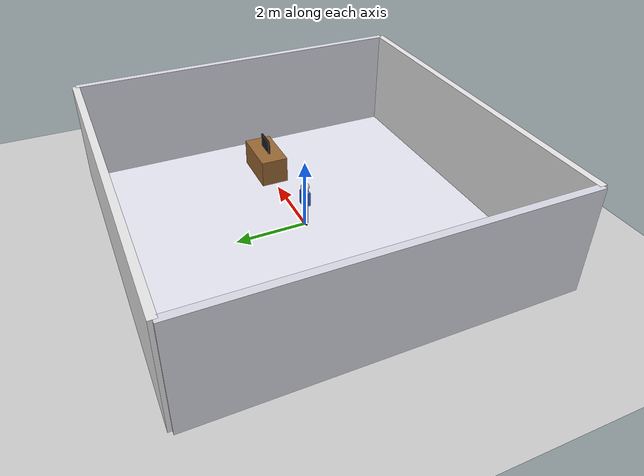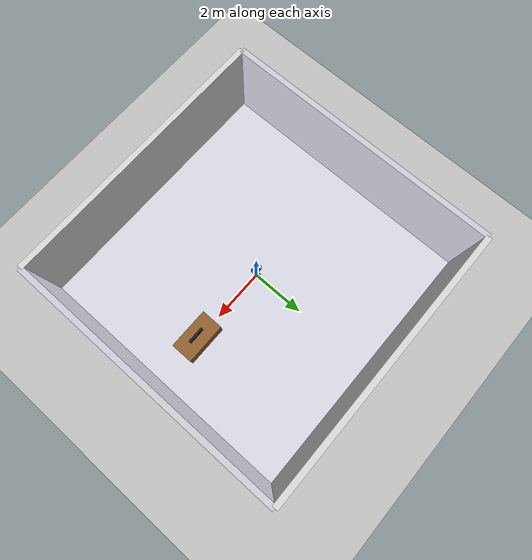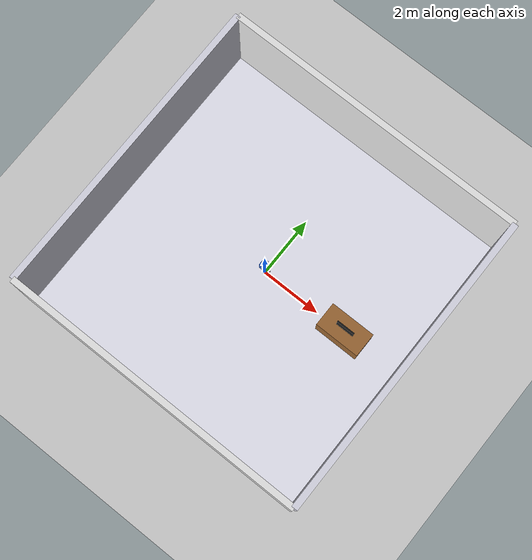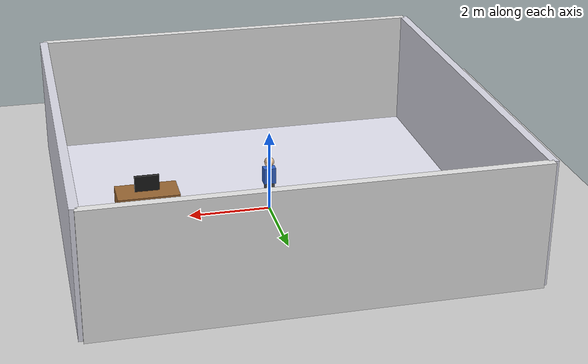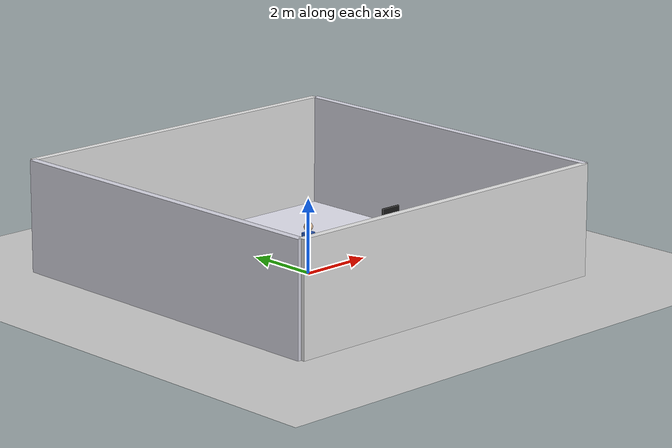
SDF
<?xml version="1.0" ?>
<sdf version="1.6">
  <world name="humanoid_lab">

    <!-- Physics Configuration -->
    <physics type="ode">
      <real_time_update_rate>1000</real_time_update_rate>
      <max_step_size>0.001</max_step_size>
      <real_time_factor>1</real_time_factor>
      <ode>
        <solver>
          <type>quick</type>
          <iters>50</iters>
          <sor>1.3</sor>
        </solver>
        <constraints>
          <cfm>0.0</cfm>
          <erp>0.2</erp>
          <contact_max_correcting_vel>100</contact_max_correcting_vel>
          <contact_surface_layer>0.001</contact_surface_layer>
        </constraints>
      </ode>
    </physics>

    <!-- Scene Configuration -->
    <scene>
      <ambient>0.4 0.4 0.4 1</ambient>
      <background>0.7 0.7 0.7 1</background>
      <shadows>true</shadows>
    </scene>

    <!-- Sun Light -->
    <light type="directional" name="sun">
      <cast_shadows>true</cast_shadows>
      <pose>0 0 10 0 0 0</pose>
      <diffuse>0.8 0.8 0.8 1</diffuse>
      <specular>0.2 0.2 0.2 1</specular>
      <direction>-0.5 0.1 -0.9</direction>
    </light>

    <!-- Ceiling Light -->
    <light type="point" name="ceiling_light">
      <pose>0 0 4 0 0 0</pose>
      <diffuse>0.5 0.5 0.5 1</diffuse>
      <specular>0.1 0.1 0.1 1</specular>
      <attenuation>
        <range>20</range>
        <constant>0.5</constant>
        <linear>0.01</linear>
        <quadratic>0.001</quadratic>
      </attenuation>
    </light>

    <!-- Ground Plane -->
    <model name="ground_plane">
      <static>true</static>
      <link name="link">
        <collision name="collision">
          <geometry>
            <plane>
              <normal>0 0 1</normal>
              <size>20 20</size>
            </plane>
          </geometry>
          <surface>
            <friction>
              <ode>
                <mu>1.0</mu>
                <mu2>1.0</mu2>
              </ode>
            </friction>
          </surface>
        </collision>
        <visual name="visual">
          <geometry>
            <plane>
              <normal>0 0 1</normal>
              <size>20 20</size>
            </plane>
          </geometry>
          <material>
            <ambient>0.8 0.8 0.8 1</ambient>
            <diffuse>0.8 0.8 0.8 1</diffuse>
            <specular>0.1 0.1 0.1 1</specular>
          </material>
        </visual>
      </link>
    </model>

    <!-- Lab Floor (Checkered Pattern Effect) -->
    <model name="lab_floor">
      <static>true</static>
      <pose>0 0 0.001 0 0 0</pose>
      <link name="link">
        <visual name="visual">
          <geometry>
            <box>
              <size>10 10 0.001</size>
            </box>
          </geometry>
          <material>
            <ambient>0.9 0.9 0.95 1</ambient>
            <diffuse>0.9 0.9 0.95 1</diffuse>
          </material>
        </visual>
      </link>
    </model>

    <!-- Lab Walls -->
    <!-- North Wall -->
    <model name="wall_north">
      <static>true</static>
      <pose>0 5 1.5 0 0 0</pose>
      <link name="link">
        <collision name="collision">
          <geometry>
            <box>
              <size>10 0.2 3</size>
            </box>
          </geometry>
        </collision>
        <visual name="visual">
          <geometry>
            <box>
              <size>10 0.2 3</size>
            </box>
          </geometry>
          <material>
            <ambient>0.9 0.9 0.9 1</ambient>
            <diffuse>0.9 0.9 0.9 1</diffuse>
          </material>
        </visual>
      </link>
    </model>

    <!-- South Wall -->
    <model name="wall_south">
      <static>true</static>
      <pose>0 -5 1.5 0 0 0</pose>
      <link name="link">
        <collision name="collision">
          <geometry>
            <box>
              <size>10 0.2 3</size>
            </box>
          </geometry>
        </collision>
        <visual name="visual">
          <geometry>
            <box>
              <size>10 0.2 3</size>
            </box>
          </geometry>
          <material>
            <ambient>0.9 0.9 0.9 1</ambient>
            <diffuse>0.9 0.9 0.9 1</diffuse>
          </material>
        </visual>
      </link>
    </model>

    <!-- East Wall -->
    <model name="wall_east">
      <static>true</static>
      <pose>5 0 1.5 0 0 0</pose>
      <link name="link">
        <collision name="collision">
          <geometry>
            <box>
              <size>0.2 10 3</size>
            </box>
          </geometry>
        </collision>
        <visual name="visual">
          <geometry>
            <box>
              <size>0.2 10 3</size>
            </box>
          </geometry>
          <material>
            <ambient>0.85 0.85 0.9 1</ambient>
            <diffuse>0.85 0.85 0.9 1</diffuse>
          </material>
        </visual>
      </link>
    </model>

    <!-- West Wall -->
    <model name="wall_west">
      <static>true</static>
      <pose>-5 0 1.5 0 0 0</pose>
      <link name="link">
        <collision name="collision">
          <geometry>
            <box>
              <size>0.2 10 3</size>
            </box>
          </geometry>
        </collision>
        <visual name="visual">
          <geometry>
            <box>
              <size>0.2 10 3</size>
            </box>
          </geometry>
          <material>
            <ambient>0.85 0.85 0.9 1</ambient>
            <diffuse>0.85 0.85 0.9 1</diffuse>
          </material>
        </visual>
      </link>
    </model>

    <!-- Simple Humanoid Placeholder -->
    <!-- This represents a basic humanoid shape for demonstration -->
    <!-- Replace with actual URDF humanoid model in practice -->
    <model name="humanoid_placeholder">
      <pose>0 0 0 0 0 0</pose>

      <!-- Torso -->
      <link name="torso">
        <pose>0 0 0.9 0 0 0</pose>
        <inertial>
          <mass>10</mass>
          <inertia>
            <ixx>0.1</ixx>
            <iyy>0.1</iyy>
            <izz>0.05</izz>
            <ixy>0</ixy>
            <ixz>0</ixz>
            <iyz>0</iyz>
          </inertia>
        </inertial>
        <collision name="collision">
          <geometry>
            <box>
              <size>0.3 0.2 0.4</size>
            </box>
          </geometry>
        </collision>
        <visual name="visual">
          <geometry>
            <box>
              <size>0.3 0.2 0.4</size>
            </box>
          </geometry>
          <material>
            <ambient>0.2 0.4 0.8 1</ambient>
            <diffuse>0.2 0.4 0.8 1</diffuse>
          </material>
        </visual>
      </link>

      <!-- Head -->
      <link name="head">
        <pose>0 0 1.25 0 0 0</pose>
        <inertial>
          <mass>2</mass>
          <inertia>
            <ixx>0.01</ixx>
            <iyy>0.01</iyy>
            <izz>0.01</izz>
            <ixy>0</ixy>
            <ixz>0</ixz>
            <iyz>0</iyz>
          </inertia>
        </inertial>
        <collision name="collision">
          <geometry>
            <sphere>
              <radius>0.12</radius>
            </sphere>
          </geometry>
        </collision>
        <visual name="visual">
          <geometry>
            <sphere>
              <radius>0.12</radius>
            </sphere>
          </geometry>
          <material>
            <ambient>0.9 0.75 0.6 1</ambient>
            <diffuse>0.9 0.75 0.6 1</diffuse>
          </material>
        </visual>
      </link>

      <!-- Left Leg -->
      <link name="left_leg">
        <pose>0.08 0 0.4 0 0 0</pose>
        <inertial>
          <mass>5</mass>
          <inertia>
            <ixx>0.05</ixx>
            <iyy>0.05</iyy>
            <izz>0.01</izz>
            <ixy>0</ixy>
            <ixz>0</ixz>
            <iyz>0</iyz>
          </inertia>
        </inertial>
        <collision name="collision">
          <geometry>
            <cylinder>
              <radius>0.05</radius>
              <length>0.6</length>
            </cylinder>
          </geometry>
        </collision>
        <visual name="visual">
          <geometry>
            <cylinder>
              <radius>0.05</radius>
              <length>0.6</length>
            </cylinder>
          </geometry>
          <material>
            <ambient>0.3 0.3 0.3 1</ambient>
            <diffuse>0.3 0.3 0.3 1</diffuse>
          </material>
        </visual>
      </link>

      <!-- Right Leg -->
      <link name="right_leg">
        <pose>-0.08 0 0.4 0 0 0</pose>
        <inertial>
          <mass>5</mass>
          <inertia>
            <ixx>0.05</ixx>
            <iyy>0.05</iyy>
            <izz>0.01</izz>
            <ixy>0</ixy>
            <ixz>0</ixz>
            <iyz>0</iyz>
          </inertia>
        </inertial>
        <collision name="collision">
          <geometry>
            <cylinder>
              <radius>0.05</radius>
              <length>0.6</length>
            </cylinder>
          </geometry>
        </collision>
        <visual name="visual">
          <geometry>
            <cylinder>
              <radius>0.05</radius>
              <length>0.6</length>
            </cylinder>
          </geometry>
          <material>
            <ambient>0.3 0.3 0.3 1</ambient>
            <diffuse>0.3 0.3 0.3 1</diffuse>
          </material>
        </visual>
      </link>

      <!-- Left Foot -->
      <link name="left_foot">
        <pose>0.08 0.05 0.05 0 0 0</pose>
        <inertial>
          <mass>1</mass>
          <inertia>
            <ixx>0.001</ixx>
            <iyy>0.001</iyy>
            <izz>0.001</izz>
            <ixy>0</ixy>
            <ixz>0</ixz>
            <iyz>0</iyz>
          </inertia>
        </inertial>
        <collision name="collision">
          <geometry>
            <box>
              <size>0.08 0.15 0.03</size>
            </box>
          </geometry>
          <surface>
            <friction>
              <ode>
                <mu>1.0</mu>
                <mu2>1.0</mu2>
              </ode>
            </friction>
          </surface>
        </collision>
        <visual name="visual">
          <geometry>
            <box>
              <size>0.08 0.15 0.03</size>
            </box>
          </geometry>
          <material>
            <ambient>0.2 0.2 0.2 1</ambient>
            <diffuse>0.2 0.2 0.2 1</diffuse>
          </material>
        </visual>
      </link>

      <!-- Right Foot -->
      <link name="right_foot">
        <pose>-0.08 0.05 0.05 0 0 0</pose>
        <inertial>
          <mass>1</mass>
          <inertia>
            <ixx>0.001</ixx>
            <iyy>0.001</iyy>
            <izz>0.001</izz>
            <ixy>0</ixy>
            <ixz>0</ixz>
            <iyz>0</iyz>
          </inertia>
        </inertial>
        <collision name="collision">
          <geometry>
            <box>
              <size>0.08 0.15 0.03</size>
            </box>
          </geometry>
          <surface>
            <friction>
              <ode>
                <mu>1.0</mu>
                <mu2>1.0</mu2>
              </ode>
            </friction>
          </surface>
        </collision>
        <visual name="visual">
          <geometry>
            <box>
              <size>0.08 0.15 0.03</size>
            </box>
          </geometry>
          <material>
            <ambient>0.2 0.2 0.2 1</ambient>
            <diffuse>0.2 0.2 0.2 1</diffuse>
          </material>
        </visual>
      </link>

      <!-- Fixed Joints (for static placeholder) -->
      <joint name="head_joint" type="fixed">
        <parent>torso</parent>
        <child>head</child>
      </joint>

      <joint name="left_hip" type="fixed">
        <parent>torso</parent>
        <child>left_leg</child>
      </joint>

      <joint name="right_hip" type="fixed">
        <parent>torso</parent>
        <child>right_leg</child>
      </joint>

      <joint name="left_ankle" type="fixed">
        <parent>left_leg</parent>
        <child>left_foot</child>
      </joint>

      <joint name="right_ankle" type="fixed">
        <parent>right_leg</parent>
        <child>right_foot</child>
      </joint>
    </model>

    <!-- Lab Equipment: Table -->
    <model name="lab_table">
      <static>true</static>
      <pose>3 0 0.4 0 0 0</pose>
      <link name="link">
        <collision name="collision">
          <geometry>
            <box>
              <size>1.5 0.8 0.8</size>
            </box>
          </geometry>
        </collision>
        <visual name="visual">
          <geometry>
            <box>
              <size>1.5 0.8 0.8</size>
            </box>
          </geometry>
          <material>
            <ambient>0.6 0.4 0.2 1</ambient>
            <diffuse>0.6 0.4 0.2 1</diffuse>
          </material>
        </visual>
      </link>
    </model>

    <!-- Lab Equipment: Monitor on Table -->
    <model name="monitor">
      <static>true</static>
      <pose>3 0 1.0 0 0 0</pose>
      <link name="link">
        <visual name="screen">
          <geometry>
            <box>
              <size>0.6 0.05 0.4</size>
            </box>
          </geometry>
          <material>
            <ambient>0.1 0.1 0.1 1</ambient>
            <diffuse>0.1 0.1 0.1 1</diffuse>
          </material>
        </visual>
      </link>
    </model>

    <!-- Gazebo ROS Plugin for clock -->
    <plugin name="gazebo_ros_state" filename="libgazebo_ros_state.so">
      <ros>
        <namespace>/gazebo</namespace>
      </ros>
      <update_rate>50</update_rate>
    </plugin>

  </world>
</sdf>
